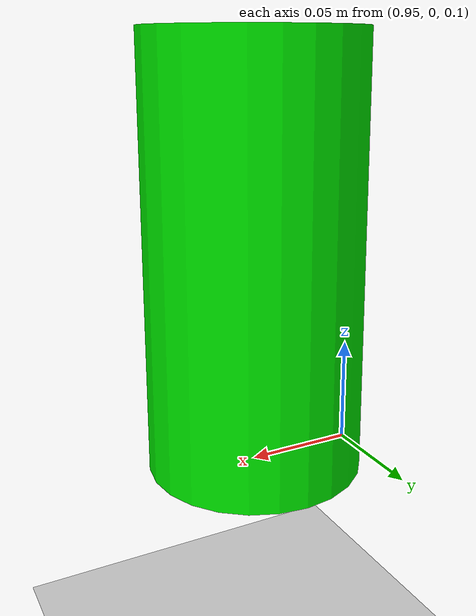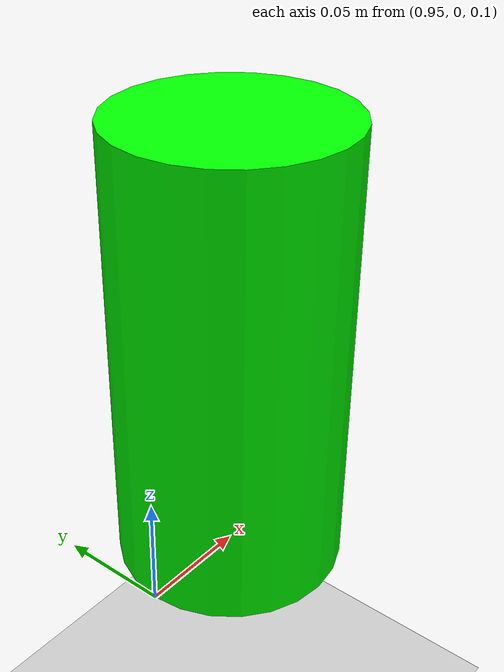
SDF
<sdf version="1.6">
  <world name="pickplace_world">
    <include>
      <uri>model://ground_plane</uri>
    </include>
    <include>
      <uri>model://cylinder</uri>
      <pose>1 0 0.1 0 0 0</pose>
    </include>
      <!-- Spawn robot using ROS 2 spawn_entity node -->
      <plugin name="spawn_robot" filename="libgazebo_ros_factory.so">
        <ros>
          <namespace>/</namespace>
        </ros>
        <robot_description_param>robot_description</robot_description_param>
        <spawn_service>spawn_entity</spawn_service>
        <initial_pose>0 0 0.1 0 0 0</initial_pose>
        <name>pickplace_rl_mobile</name>
      </plugin>
  </world>
</sdf>

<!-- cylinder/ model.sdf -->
<sdf version="1.6">
  <model name="cylinder">
    <static>false</static>
    <link name="link">
      <pose>0 0 0.1 0 0 0</pose>
      <collision name="collision">
        <geometry>
          <cylinder>
            <radius>0.05</radius>
            <length>0.2</length>
          </cylinder>
        </geometry>
      </collision>
      <visual name="visual">
        <geometry>
          <cylinder>
            <radius>0.05</radius>
            <length>0.2</length>
          </cylinder>
        </geometry>
        <material>
          <ambient>0 1 0 1</ambient>
        </material>
      </visual>
    </link>
  </model>
</sdf>
